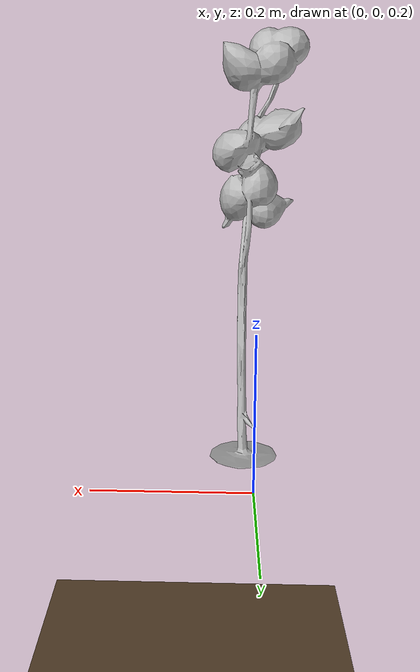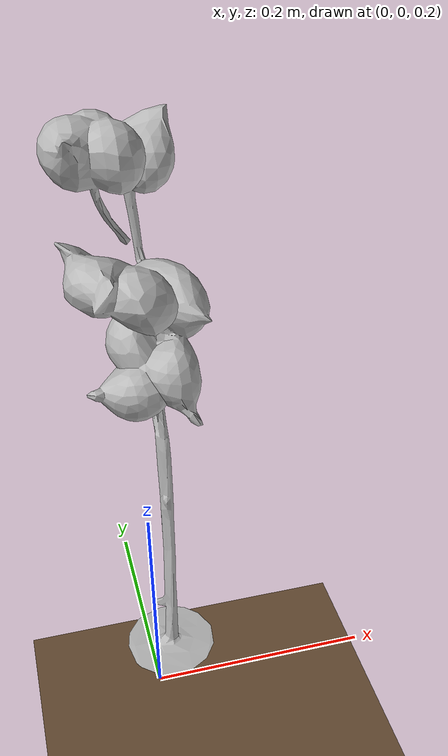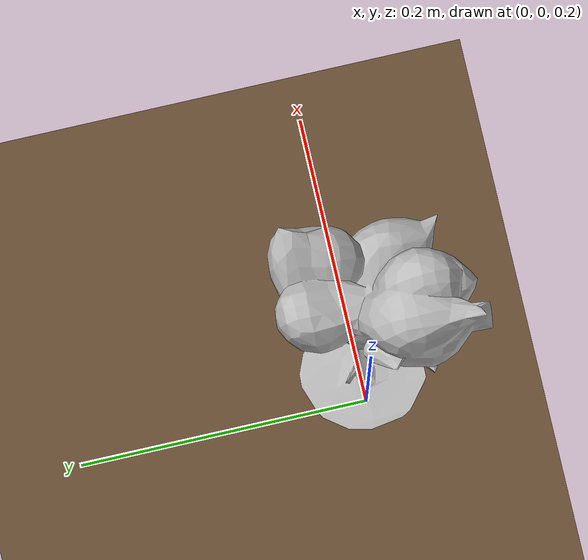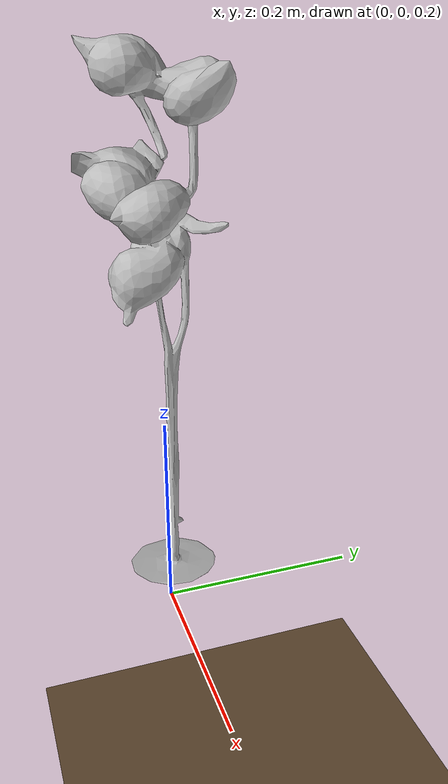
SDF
<?xml version="1.0"?>
<sdf version="1.6">
  <world name="test_world">

    <!-- Physics -->
    <plugin filename="ignition-gazebo-physics-system"
            name="ignition::gazebo::systems::Physics">
    </plugin>
    <plugin filename="ignition-gazebo-scene-broadcaster-system"
            name="ignition::gazebo::systems::SceneBroadcaster">
    </plugin>

    <!-- Light -->
    <light name='sun' type='directional'>
      <cast_shadows>1</cast_shadows>
      <pose>0 0 10 0 0 0</pose>
      <diffuse>0.8 0.8 0.8 1</diffuse>
      <specular>0.2 0.2 0.2 1</specular>
      <direction>-0.5 0.1 -0.9</direction>
    </light>

    <!-- Ground Plane -->
    <model name="ground_plane">
      <static>true</static>
      <link name="link">
        <collision name="collision">
          <geometry>
            <plane>
              <normal>0 0 1</normal>
              <size>100 100</size>
            </plane>
          </geometry>
        </collision>
        <visual name="visual">
          <geometry>
            <plane>
              <normal>0 0 1</normal>
              <size>100 100</size>
            </plane>
          </geometry>
          <material>
            <ambient>0.3 0.2 0.1 1</ambient>
            <diffuse>0.4 0.3 0.2 1</diffuse>
          </material>
        </visual>
      </link>
    </model>

    <!-- Cotton cluster -->
    <include>
      <uri>model://cotton_cluster</uri>
      <pose>0 0 0.5 0 0 0</pose>
      <static>true</static>
    </include>

  </world>
</sdf>

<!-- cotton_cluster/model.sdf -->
<sdf version="1.6">
  <model name="cotton_cluster">
    <static>true</static>
    <link name="link">
      <collision name="collision">
        <geometry>
          <sphere>
            <radius>0.05</radius>
          </sphere>
        </geometry>
      </collision>
      <visual name="visual">
        <geometry>
          <mesh>
            <scale>0.5 0.5 0.5</scale>
            <uri>model://cotton_cluster/meshes/object_0/object_0.stl</uri>
          </mesh>
        </geometry>
      </visual>
    </link>
  </model>
</sdf>
